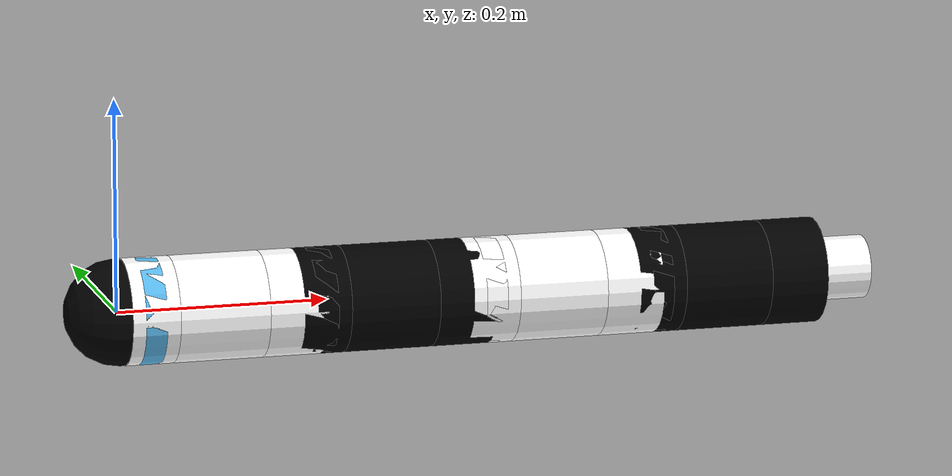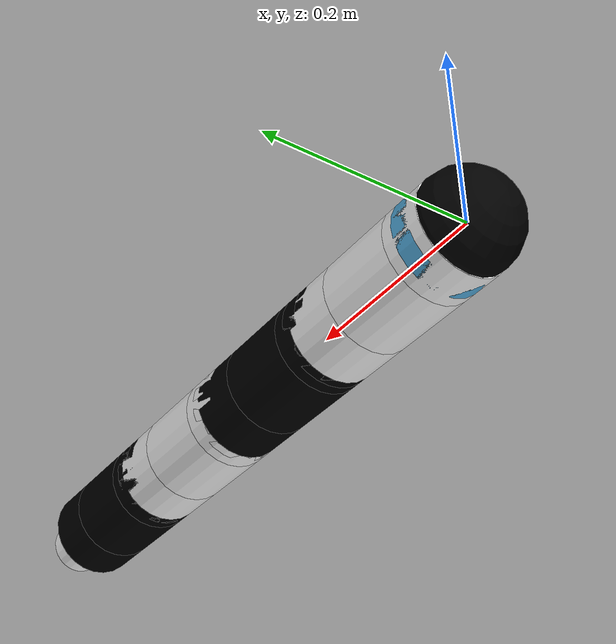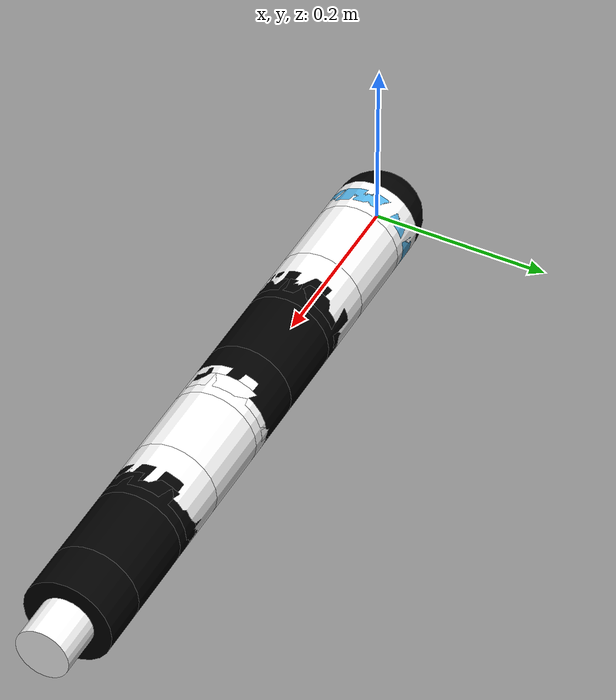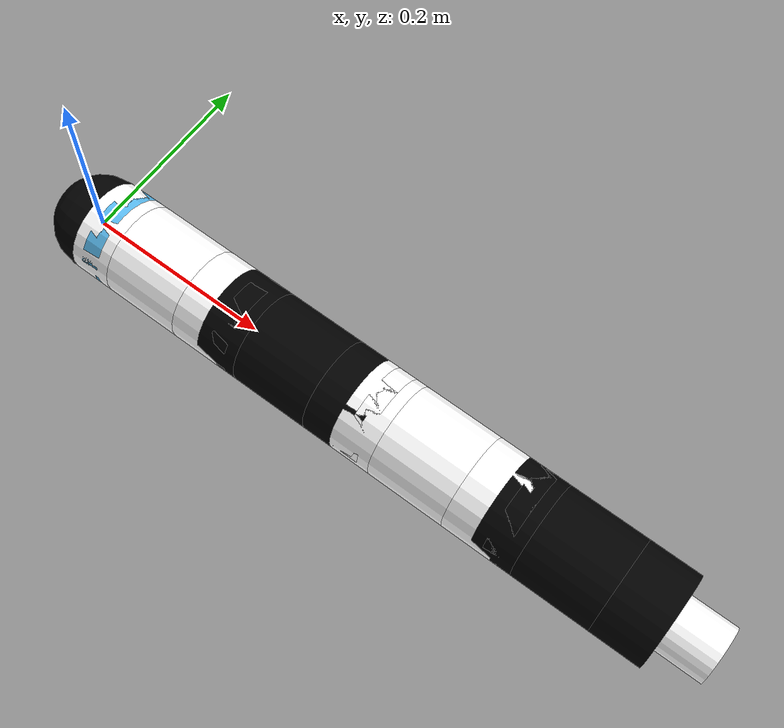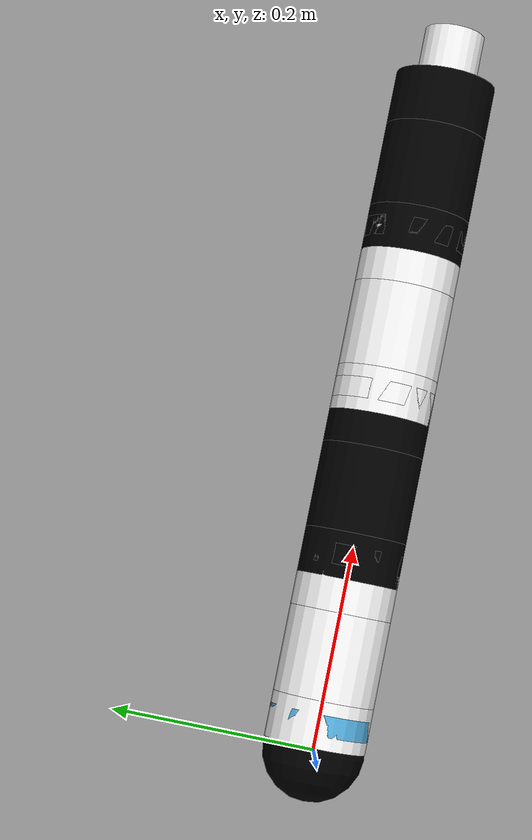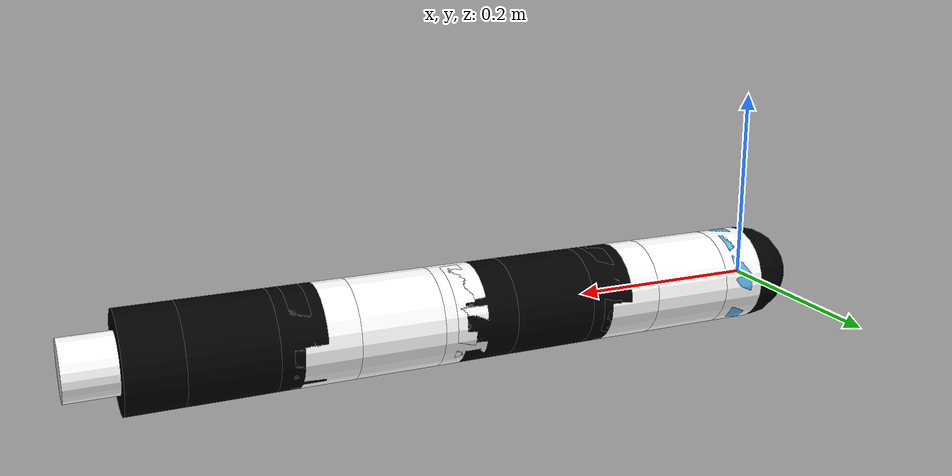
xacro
<?xml version="1.0" encoding="UTF-8"?>
<!-- Add macros and normalisation for prismatic joints-->
<robot xmlns:xacro = "http://www.ros.org/wiki/xacro" name = "full_snakebot">
    <!-- Define colors -->
    <material name = "white">
        <color rgba = "1 1 1 1"/>
    </material>
    <material name = "black">
        <color rgba = "0 0 0 1"/>
    </material>

    <!-- Define head link -->
    <link name = "head">
        <inertial>
            <origin rpy = "0 1.5708 0" xyz = "0 0 0"/>
            <mass value = "1"/>
            <inertia ixx = "0.0001" ixy = "0" ixz = "0" iyy = "0.0001" iyz = "0" izz = "0.0001"/>
        </inertial>
        <visual>
            <origin rpy = "0 1.5708 0" xyz = "0 0 0"/>
            <geometry>
                <sphere radius = "0.05"/>
            </geometry>
            <material name = "black"/>
        </visual>
        <collision>
            <origin rpy = "0 1.5708 0" xyz = "0 0 0"/>
            <geometry>
                <sphere radius = "0.05"/>
            </geometry>
        </collision>
    </link>
    <link name = "m0_base_link">
        <visual>
            <origin rpy = "0 1.5708 0" xyz = "0 0 0"/>
            <geometry>
                <cylinder radius = "0.05" length = "0.02"/>
            </geometry>
            <material name = "${color}"/>
        </visual>
    </link>
    <joint name = "head_to_m0" type = "fixed">
        <parent link = "head"/>
        <child link = "m0_base_link"/>
        <origin xyz = "0.0275 0 0"/>
    </joint>

    <!-- Module Definition -->
    <xacro:macro name = "module" params = "number color">
        <!-- Bottom bracket -->
        <link name = "m${number}_bottom_bracket">
            <visual>
                <origin rpy = "0 1.5708 0" xyz = "0 0 0"/>
                <geometry>
                    <cylinder radius = "0.05" length = "0.045"/>
                </geometry>
                <material name = "${color}"/>
            </visual>
            <collision>
                <origin rpy = "0 1.5708 0" xyz = "0 0 0"/>
                <geometry>
                    <cylinder radius = "0.05" length = "0.045"/>
                </geometry>
            </collision>
            <inertial>
                <origin rpy = "0 1.5708 0" xyz = "0 0 0"/>
                <mass value = "0.1"/>
                <inertia ixx = "0.0001" ixy = "0" ixz = "0" iyy = "0.0001" iyz = "0" izz = "0.0001"/>
            </inertial>
        </link>
        <!-- Bottom bracket (virtual link 0) -->
        <link name = "m${number}_virtual_link_zero"></link>
        <!-- Bottom bracket (virtual link 1) -->
        <link name = "m${number}_virtual_link_one"></link>

        <!-- Middle bracket -->
        <link name = "m${number}_middle_bracket">
            <visual>
                <origin rpy = "0 1.5708 0" xyz = "0 0 0"/>
                <geometry>
                    <cylinder radius = "0.05" length = "0.085"/>
                </geometry>
                <material name = "${color}"/>
            </visual>
            <collision>
                <origin rpy = "0 1.5708 0" xyz = "0 0 0"/>
                <geometry>
                    <cylinder radius = "0.05" length = "0.07"/>
                </geometry>
            </collision>
            <inertial>
                <origin rpy = "0 1.5708 0" xyz = "0 0 0"/>
                <mass value = "0.1"/>
                <inertia ixx = "0.0001" ixy = "0" ixz = "0" iyy = "0.0001" iyz = "0" izz = "0.0001"/>
            </inertial>
        </link>
        <!-- Middle bracket (virtual link 2) -->
        <link name = "m${number}_virtual_link_two"></link>

        <!-- Top bracket -->
        <link name = "m${number}_top_bracket">
            <visual>
                <origin rpy = "0 1.5708 0" xyz = "0 0 0"/>
                <geometry>
                    <cylinder radius = "0.05" length = "0.055"/>
                </geometry>
                <material name = "${color}"/>
            </visual>
            <!-- Collision - only for the top half! -->
            <collision>
                <origin rpy = "0 1.5708 0" xyz = "0.025 0 0"/>
                <geometry>
                    <cylinder radius = "0.05" length = "0.055"/>
                </geometry>
            </collision>
            <inertial>
                <origin rpy = "0 1.5708 0" xyz = "0 0 0"/>
                <mass value = "0.1"/>
                <inertia ixx = "0.0001" ixy = "0" ixz = "0" iyy = "0.0001" iyz = "0" izz = "0.0001"/>
            </inertial>
        </link>
        <!-- Top bracket (virtual link 3)-->
        <link name = "m${number}_virtual_link_three"/>

        <!-- Module joints -->
        <!-- Joint 0 -->
        <joint name = "m${number}_joint_zero" type = "prismatic">
            <parent link = "m${number}_base_link"/>
            <child link = "m${number}_bottom_bracket"/>
            <axis xyz = "1 0 0"/>
            <limit lower = "0" upper = "0.02" effort = "1" velocity = "0.01"/>
            <origin rpy = "0 0 0" xyz = "0 0 0"/>
            <dynamics damping = "0.0" friction = "0.01"/>
        </joint>

        <!-- Joint 1 -->
        <joint name = "m${number}_joint_one" type = "revolute">
            <parent link = "m${number}_bottom_bracket"/>
            <child link = "m${number}_virtual_link_zero"/>
            <axis xyz = "0 0 1"/>
            <limit lower = "-0.0873" upper = "0.0873" effort = "1" velocity = "0.01"/>
        </joint>

        <!-- Joint 2 -->
        <joint name = "m${number}_joint_two" type = "revolute">
            <parent link = "m${number}_virtual_link_zero"/>
            <child link = "m${number}_virtual_link_one"/>
            <axis xyz = "1 0 0"/>
            <limit lower = "-0.2618" upper = "0.2618" effort = "1" velocity = "0.01"/>
            <origin xyz = "0.02 0 0"/>
        </joint>

        <!-- Fixed joint (linking cross-joint and spring-stell) -->
        <joint name = "m${number}_fix_one" type = "fixed">
            <parent link = "m${number}_virtual_link_one"/>
            <child link = "m${number}_middle_bracket"/>
            <origin rpy = "0 0 0" xyz = "0.045 0 0"/>
        </joint>
        <joint name = "m${number}_fix_two" type = "fixed">
            <parent link = "m${number}_middle_bracket"/>
            <child link = "m${number}_virtual_link_two"/>
            <origin rpy = "0 0 0" xyz = "0.015 0 0"/>
        </joint>

        <!-- Joint 3 -->
        <joint name = "m${number}_joint_three" type = "revolute">
            <parent link = "m${number}_virtual_link_two"/>
            <child link = "m${number}_virtual_link_three"/>
            <axis xyz = "0 0 1"/>
            <limit lower = "-0.5236" upper = "0.5236" effort = "1" velocity = "0.01"/>
            <origin rpy = "0 0 0" xyz = "0 0 0"/>
        </joint>

        <!-- Joint 4 -->
        <joint name = "m${number}_joint_four" type = "revolute">
            <parent link = "m${number}_virtual_link_three"/>
            <child link = "m${number}_top_bracket"/>
            <axis xyz = "0 1 0"/>
            <limit lower = "-0.5236" upper = "0.5236" effort = "1" velocity = "0.01"/>
            <origin rpy = "0 0 0" xyz = "0.055 0 0"/>
        </joint>
    </xacro:macro>

    <!-- Initiate modules -->
    <xacro:module number = "0" color = "white"/>
    <!-- m1 base link -->
    <link name = "m1_base_link">
        <visual>
            <origin rpy = "0 1.5708 0" xyz = "0 0 0"/>
            <geometry>
                <cylinder radius = "0.05" length = "0.02"/>
            </geometry>
            <material name = "black"/>
        </visual>
    </link>
    <joint name = "m0_to_m1" type = "fixed">
        <parent link = "m0_top_bracket"/>
        <child link = "m1_base_link"/>
        <origin xyz = "0.0275 0 0"/>
    </joint>
    <xacro:module number = "1" color = "black"/>
    <!-- m2 base link -->
    <link name = "m2_base_link">
        <visual>
            <origin rpy = "0 1.5708 0" xyz = "0 0 0"/>
            <geometry>
                <cylinder radius = "0.05" length = "0.02"/>
            </geometry>
            <material name = "white"/>
        </visual>
    </link>
    <joint name = "m1_to_m2" type = "fixed">
        <parent link = "m1_top_bracket"/>
        <child link = "m2_base_link"/>
        <origin xyz = "0.0275 0 0"/>
    </joint>
    <xacro:module number = "2" color = "white"/>
    <!-- m3 base link -->
    <link name = "m3_base_link">
        <visual>
            <origin rpy = "0 1.5708 0" xyz = "0 0 0"/>
            <geometry>
                <cylinder radius = "0.05" length = "0.02"/>
            </geometry>
            <material name = "black"/>
        </visual>
    </link>
    <joint name = "m2_to_m3" type = "fixed">
        <parent link = "m2_top_bracket"/>
        <child link = "m3_base_link"/>
        <origin xyz = "0.0275 0 0"/>
    </joint>
    <xacro:module number = "3" color = "black"/>
    <!-- Define tail link -->
    <link name = "tail">
        <visual>
            <origin rpy = "0 1.5708 0" xyz = "0 0 0"/>
            <geometry>
                <cylinder radius = "0.03" length = "0.1"/>
            </geometry>
            <material name = "white"/>
        </visual>
        <collision>
            <origin rpy = "0 1.5708 0" xyz = "0 0 0"/>
            <geometry>
                <cylinder radius = "0.03" length = "0.1"/>
            </geometry>
        </collision>
        <inertial>
            <origin rpy = "0 1.5708 0" xyz = "0 0 0"/>
            <mass value = "1"/>
            <inertia ixx = "0.0001" ixy = "0" ixz = "0" iyy = "0.0001" iyz = "0" izz = "0.0001"/>
        </inertial>
    </link>
    <!-- Connect modules -->
    <joint name = "m3_to_tail" type = "fixed">
        <parent link = "m3_top_bracket"/>
        <child link = "tail"/>
        <origin xyz = "0.0275 0 0"/>
    </joint>
</robot>
